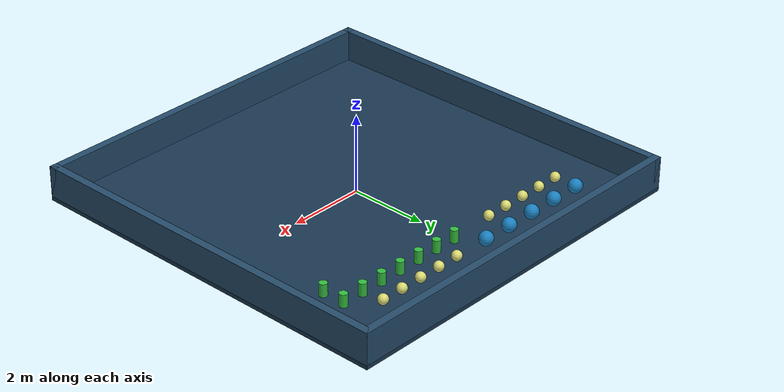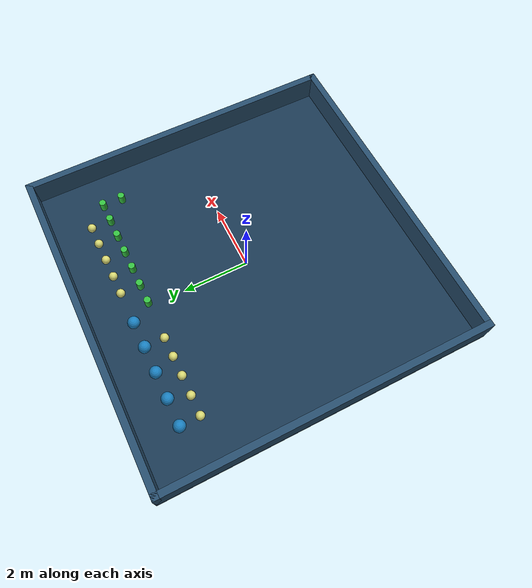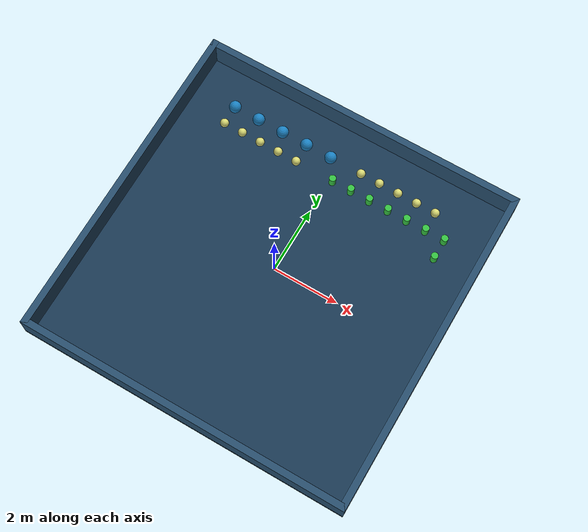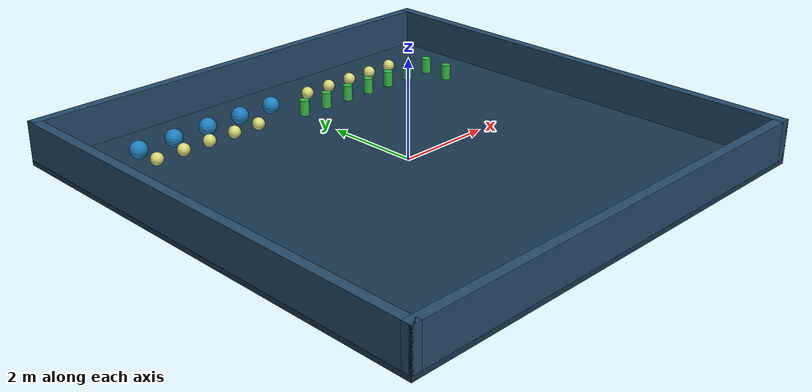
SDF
<?xml version="1.0"?>
<sdf version="1.10">
  <world name="phase2_ocean_arena">
    <gravity>0 0 -9.8</gravity>
    <plugin filename="gz-sim-physics-system" name="gz::sim::systems::Physics"/>
    <plugin filename="gz-sim-user-commands-system" name="gz::sim::systems::UserCommands"/>
    <plugin filename="gz-sim-scene-broadcaster-system" name="gz::sim::systems::SceneBroadcaster"/>
    <plugin filename="gz-sim-sensors-system" name="gz::sim::systems::Sensors">
      <render_engine>ogre2</render_engine>
    </plugin>

    <scene>
      <ambient>0.35 0.45 0.60 1.0</ambient>
      <background>0.05 0.10 0.18 1.0</background>
    </scene>

    <light name="sun" type="directional">
      <cast_shadows>true</cast_shadows>
      <pose>0 0 12 0 0 0</pose>
      <diffuse>0.8 0.85 0.9 1</diffuse>
      <specular>0.2 0.2 0.2 1</specular>
      <direction>-0.5 0.25 -1</direction>
    </light>

    <model name="floor">
      <static>true</static>
      <link name="link">
        <collision name="collision">
          <geometry>
            <box><size>10 10 0.1</size></box>
          </geometry>
        </collision>
        <visual name="visual">
          <geometry>
            <box><size>10 10 0.1</size></box>
          </geometry>
          <material>
            <ambient>0.10 0.22 0.32 1</ambient>
            <diffuse>0.10 0.22 0.32 1</diffuse>
          </material>
        </visual>
      </link>
      <pose>0 0 -0.05 0 0 0</pose>
    </model>

    <model name="north_wall">
      <static>true</static>
      <link name="link">
        <collision name="collision"><geometry><box><size>10 0.2 0.8</size></box></geometry></collision>
        <visual name="visual"><geometry><box><size>10 0.2 0.8</size></box></geometry><material><ambient>0.15 0.30 0.42 1</ambient><diffuse>0.15 0.30 0.42 1</diffuse></material></visual>
      </link>
      <pose>0 4.9 0.4 0 0 0</pose>
    </model>
    <model name="south_wall">
      <static>true</static>
      <link name="link">
        <collision name="collision"><geometry><box><size>10 0.2 0.8</size></box></geometry></collision>
        <visual name="visual"><geometry><box><size>10 0.2 0.8</size></box></geometry><material><ambient>0.15 0.30 0.42 1</ambient><diffuse>0.15 0.30 0.42 1</diffuse></material></visual>
      </link>
      <pose>0 -4.9 0.4 0 0 0</pose>
    </model>
    <model name="east_wall">
      <static>true</static>
      <link name="link">
        <collision name="collision"><geometry><box><size>0.2 10 0.8</size></box></geometry></collision>
        <visual name="visual"><geometry><box><size>0.2 10 0.8</size></box></geometry><material><ambient>0.15 0.30 0.42 1</ambient><diffuse>0.15 0.30 0.42 1</diffuse></material></visual>
      </link>
      <pose>4.9 0 0.4 0 0 0</pose>
    </model>
    <model name="west_wall">
      <static>true</static>
      <link name="link">
        <collision name="collision"><geometry><box><size>0.2 10 0.8</size></box></geometry></collision>
        <visual name="visual"><geometry><box><size>0.2 10 0.8</size></box></geometry><material><ambient>0.15 0.30 0.42 1</ambient><diffuse>0.15 0.30 0.42 1</diffuse></material></visual>
      </link>
      <pose>-4.9 0 0.4 0 0 0</pose>
    </model>

    <include><name>tuna_0</name><uri>model://tuna_simple</uri><pose>-3.5 3.7 0.15 0 0 0</pose></include>
    <include><name>tuna_1</name><uri>model://tuna_simple</uri><pose>-2.7 3.7 0.15 0 0 0</pose></include>
    <include><name>tuna_2</name><uri>model://tuna_simple</uri><pose>-1.9 3.7 0.15 0 0 0</pose></include>
    <include><name>tuna_3</name><uri>model://tuna_simple</uri><pose>-1.1 3.7 0.15 0 0 0</pose></include>
    <include><name>tuna_4</name><uri>model://tuna_simple</uri><pose>-0.3 3.7 0.15 0 0 0</pose></include>

    <include><name>sardine_0</name><uri>model://sardine_simple</uri><pose>0.7 3.7 0.15 0 0 0</pose></include>
    <include><name>sardine_1</name><uri>model://sardine_simple</uri><pose>1.3 3.7 0.15 0 0 0</pose></include>
    <include><name>sardine_2</name><uri>model://sardine_simple</uri><pose>1.9 3.7 0.15 0 0 0</pose></include>
    <include><name>sardine_3</name><uri>model://sardine_simple</uri><pose>2.5 3.7 0.15 0 0 0</pose></include>
    <include><name>sardine_4</name><uri>model://sardine_simple</uri><pose>3.1 3.7 0.15 0 0 0</pose></include>
    <include><name>sardine_5</name><uri>model://sardine_simple</uri><pose>-3.5 3.1 0.15 0 0 0</pose></include>
    <include><name>sardine_6</name><uri>model://sardine_simple</uri><pose>-2.9 3.1 0.15 0 0 0</pose></include>
    <include><name>sardine_7</name><uri>model://sardine_simple</uri><pose>-2.3 3.1 0.15 0 0 0</pose></include>
    <include><name>sardine_8</name><uri>model://sardine_simple</uri><pose>-1.7 3.1 0.15 0 0 0</pose></include>
    <include><name>sardine_9</name><uri>model://sardine_simple</uri><pose>-1.1 3.1 0.15 0 0 0</pose></include>

    <include><name>seaweed_0</name><uri>model://seaweed_simple</uri><pose>0.1 3.1 0.15 0 0 0</pose></include>
    <include><name>seaweed_1</name><uri>model://seaweed_simple</uri><pose>0.7 3.1 0.15 0 0 0</pose></include>
    <include><name>seaweed_2</name><uri>model://seaweed_simple</uri><pose>1.3 3.1 0.15 0 0 0</pose></include>
    <include><name>seaweed_3</name><uri>model://seaweed_simple</uri><pose>1.9 3.1 0.15 0 0 0</pose></include>
    <include><name>seaweed_4</name><uri>model://seaweed_simple</uri><pose>2.5 3.1 0.15 0 0 0</pose></include>
    <include><name>seaweed_5</name><uri>model://seaweed_simple</uri><pose>3.1 3.1 0.15 0 0 0</pose></include>
    <include><name>seaweed_6</name><uri>model://seaweed_simple</uri><pose>3.7 3.1 0.15 0 0 0</pose></include>
    <include><name>seaweed_7</name><uri>model://seaweed_simple</uri><pose>3.7 2.5 0.15 0 0 0</pose></include>
  </world>
</sdf>

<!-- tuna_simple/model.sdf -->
<sdf version="1.10">
  <model name="tuna_simple">
    <static>true</static>
    <link name="link">
      <visual name="visual">
        <geometry><sphere><radius>0.18</radius></sphere></geometry>
        <material><ambient>0.10 0.50 0.75 1</ambient><diffuse>0.10 0.50 0.75 1</diffuse></material>
      </visual>
    </link>
  </model>
</sdf>

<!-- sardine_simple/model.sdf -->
<sdf version="1.10">
  <model name="sardine_simple">
    <static>true</static>
    <link name="link">
      <visual name="visual">
        <geometry><sphere><radius>0.13</radius></sphere></geometry>
        <material><ambient>0.85 0.85 0.45 1</ambient><diffuse>0.85 0.85 0.45 1</diffuse></material>
      </visual>
    </link>
  </model>
</sdf>

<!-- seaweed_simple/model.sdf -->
<sdf version="1.10">
  <model name="seaweed_simple">
    <static>true</static>
    <link name="link">
      <visual name="visual">
        <geometry><cylinder><radius>0.10</radius><length>0.35</length></cylinder></geometry>
        <material><ambient>0.20 0.75 0.25 1</ambient><diffuse>0.20 0.75 0.25 1</diffuse></material>
      </visual>
    </link>
  </model>
</sdf>
